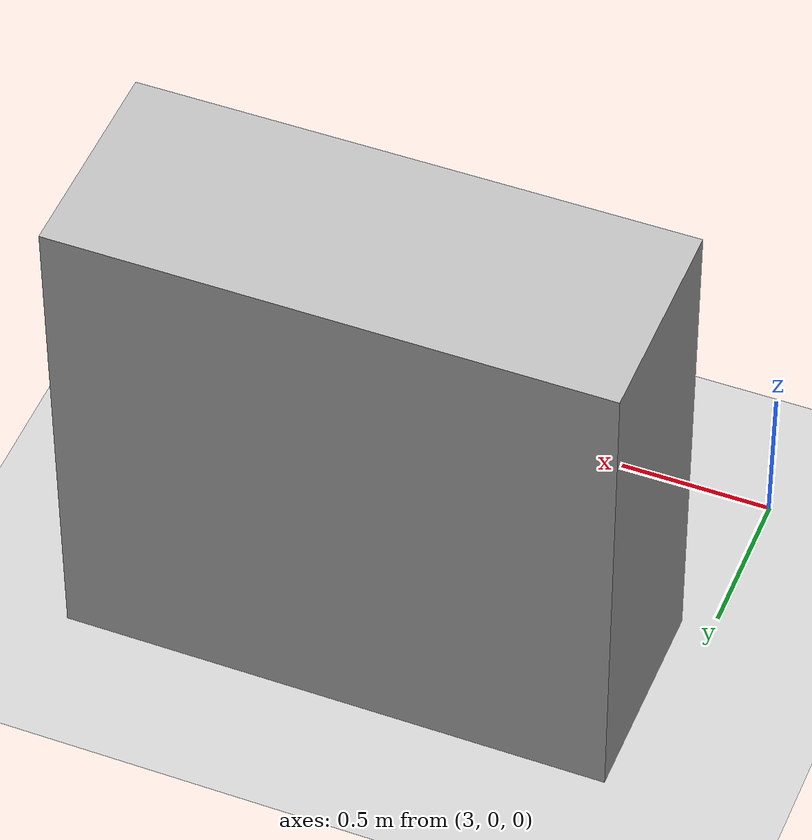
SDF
<?xml version="1.0"?>
<sdf version="1.9"><world name="crowded_waiting_area"><plugin filename="gz-sim-physics-system" name="gz::sim::systems::Physics"/><plugin filename="gz-sim-scene-broadcaster-system" name="gz::sim::systems::SceneBroadcaster"/><include><uri>model://sun</uri></include><include><uri>model://ground_plane</uri></include><model name="people_group"><static>true</static><pose>4 0.9 0.85 0 0 0</pose><link name="link"><collision name="c"><geometry><box><size>1.8 0.7 1.7</size></box></geometry></collision><visual name="v"><geometry><box><size>1.8 0.7 1.7</size></box></geometry></visual></link></model></world></sdf>
